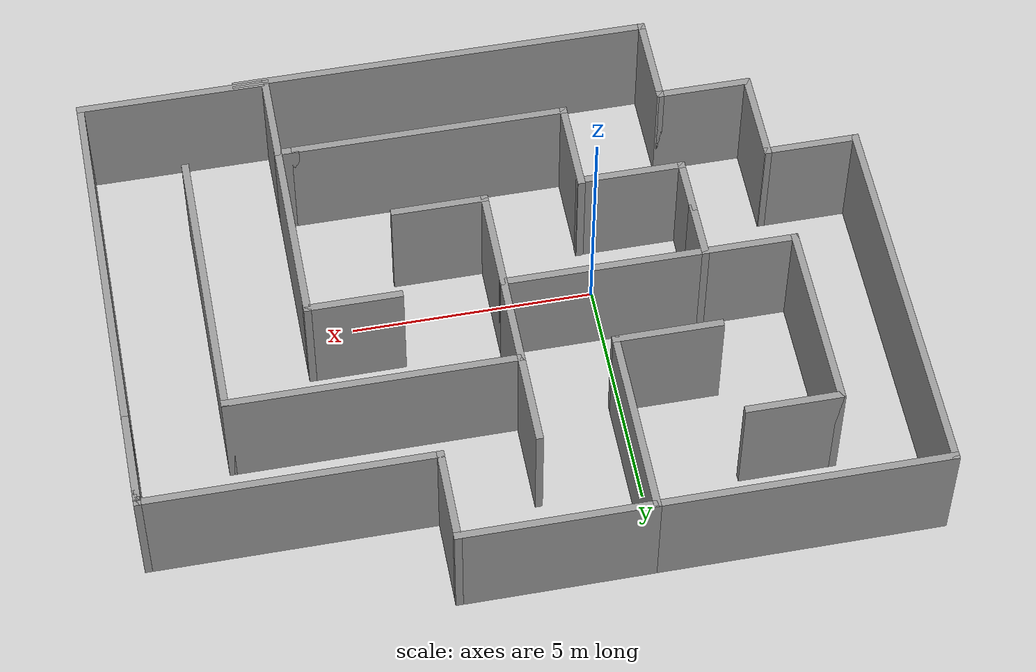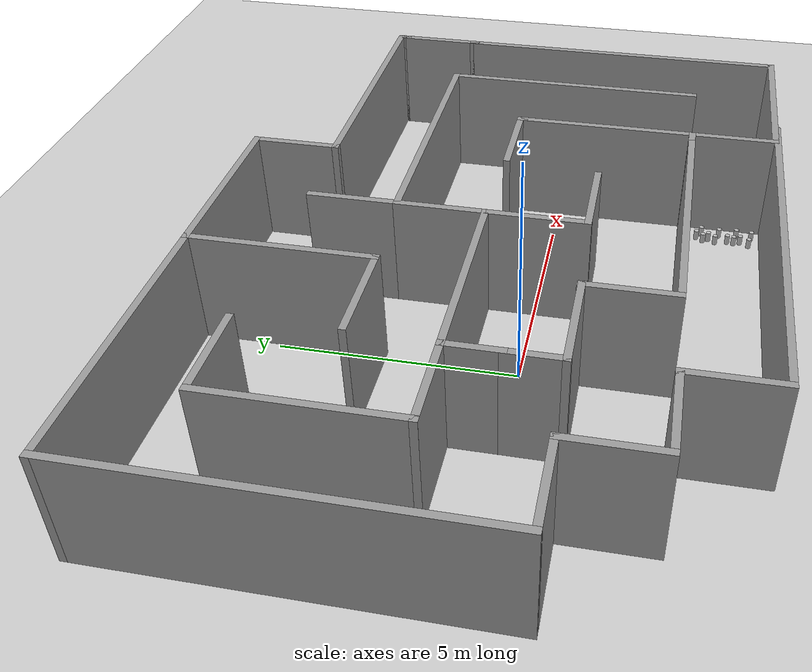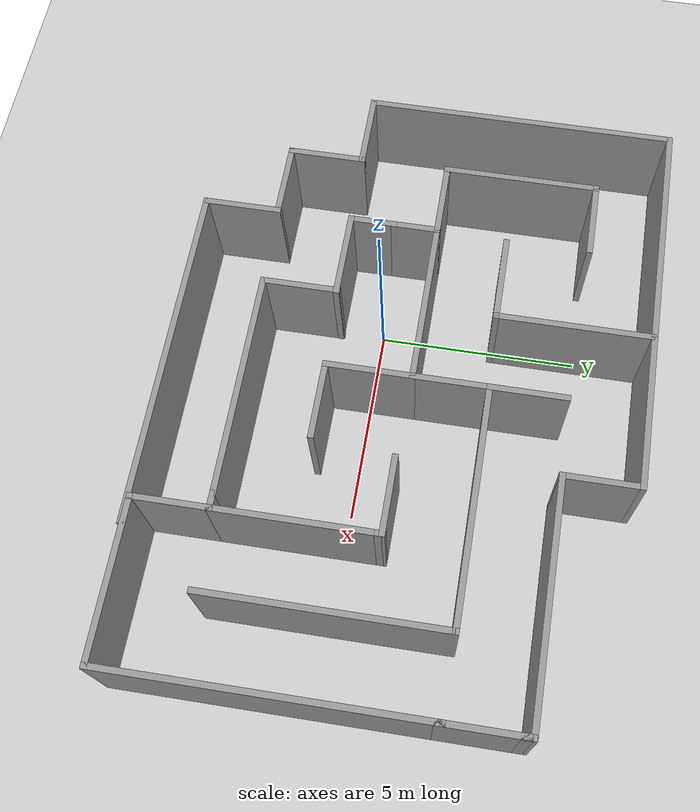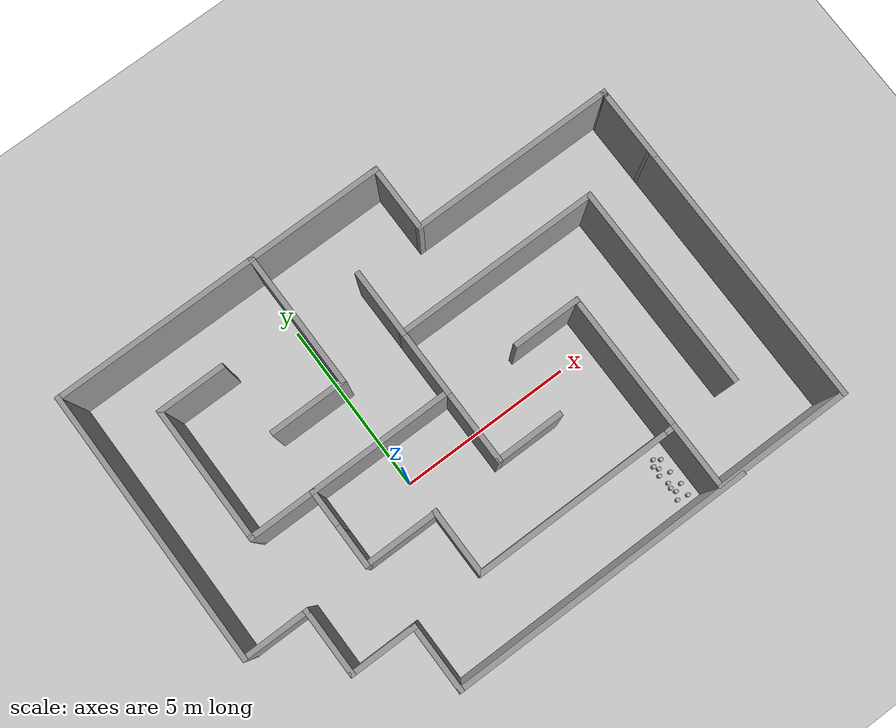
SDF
<sdf version="1.7">
 <world name="default">
  <light name="sun" type="directional">
   <pose>0 0 10 0 -0 0</pose>
   <diffuse>0.8 0.8 0.8 1</diffuse>
   <specular>0.2 0.2 0.2 1</specular>
   <attenuation>
    <range>1000</range>
    <constant>0.9</constant>
    <linear>0.01</linear>
    <quadratic>0.001</quadratic>
   </attenuation>
   <direction>-0.5 0.1 -0.9</direction>
   <spot><inner_angle>0</inner_angle><outer_angle>0</outer_angle><falloff>0</falloff></spot>
  </light>
  <model name="ground_plane">
   <static>1</static>
   <link name="link">
    <collision name="collision">
     <geometry><plane><normal>0 0 1</normal><size>100 100</size></plane></geometry>
     <surface><friction><ode><mu>100</mu><mu2>50</mu2></ode></friction></surface>
    </collision>
    <visual name="visual">
     <cast_shadows>0</cast_shadows>
     <geometry><plane><normal>0 0 1</normal><size>100 100</size></plane></geometry>
     <material>
      <script><uri>file://media/materials/scripts/gazebo.material</uri><name>Gazebo/Grey</name></script>
     </material>
    </visual>
   </link>
  </model>
  <gravity>0 0 -9.8</gravity>
  <magnetic_field>6e-06 2.3e-05 -4.2e-05</magnetic_field>
  <atmosphere type="adiabatic"/>
  <physics type="ode">
   <max_step_size>0.001</max_step_size>
   <real_time_factor>1</real_time_factor>
   <real_time_update_rate>1000</real_time_update_rate>
  </physics>
  <scene><ambient>0.4 0.4 0.4 1</ambient><background>0.7 0.7 0.7 1</background><shadows>1</shadows></scene>
  <audio><device>default</device></audio>
  <spherical_coordinates>
   <surface_model>EARTH_WGS84</surface_model>
   <latitude_deg>0</latitude_deg>
   <longitude_deg>0</longitude_deg>
   <elevation>0</elevation>
   <heading_deg>0</heading_deg>
  </spherical_coordinates>
  <model name="labyrinth">
   <pose>2.07355 0.913089 0 0 -0 0</pose>
   <link name="Wall_10">
    <collision name="Wall_10_Collision">
     <geometry><box><size>4.25 0.15 2.5</size></box></geometry>
     <pose>0 0 1.25 0 -0 0</pose>
    </collision>
    <visual name="Wall_10_Visual">
     <pose>0 0 1.25 0 -0 0</pose>
     <geometry><box><size>4.25 0.15 2.5</size></box></geometry>
     <material>
      <script><uri>file://media/materials/scripts/gazebo.material</uri><name>Gazebo/Grey</name></script>
      <ambient>1 1 1 1</ambient>
     </material>
     <meta><layer>0</layer></meta>
    </visual>
    <pose>-2.06523 0.157897 0 0 -0 0</pose>
   </link>
   <link name="Wall_11">
    <collision name="Wall_11_Collision">
     <geometry><box><size>2.25 0.15 2.5</size></box></geometry>
     <pose>0 0 1.25 0 -0 0</pose>
    </collision>
    <visual name="Wall_11_Visual">
     <pose>0 0 1.25 0 -0 0</pose>
     <geometry><box><size>2.25 0.15 2.5</size></box></geometry>
     <material>
      <script><uri>file://media/materials/scripts/gazebo.material</uri><name>Gazebo/Grey</name></script>
      <ambient>1 1 1 1</ambient>
     </material>
     <meta><layer>0</layer></meta>
    </visual>
    <pose>-0.015228 -0.892103 0 0 -0 -1.5708</pose>
   </link>
   <link name="Wall_12">
    <collision name="Wall_12_Collision">
     <geometry><box><size>2 0.15 2.5</size></box></geometry>
     <pose>0 0 1.25 0 -0 0</pose>
    </collision>
    <visual name="Wall_12_Visual">
     <pose>0 0 1.25 0 -0 0</pose>
     <geometry><box><size>2 0.15 2.5</size></box></geometry>
     <material>
      <script><uri>file://media/materials/scripts/gazebo.material</uri><name>Gazebo/Grey</name></script>
      <ambient>1 1 1 1</ambient>
     </material>
     <meta><layer>0</layer></meta>
    </visual>
    <pose>0.909772 -1.9421 0 0 -0 0</pose>
   </link>
   <link name="Wall_14">
    <collision name="Wall_14_Collision">
     <geometry><box><size>2 0.15 2.5</size></box></geometry>
     <pose>0 0 1.25 0 -0 0</pose>
    </collision>
    <visual name="Wall_14_Visual">
     <pose>0 0 1.25 0 -0 0</pose>
     <geometry><box><size>2 0.15 2.5</size></box></geometry>
     <material>
      <script><uri>file://media/materials/scripts/gazebo.material</uri><name>Gazebo/Grey</name></script>
      <ambient>1 1 1 1</ambient>
     </material>
     <meta><layer>0</layer></meta>
    </visual>
    <pose>-2.025 -2.95 0 0 -0 -1.5708</pose>
   </link>
   <link name="Wall_15">
    <collision name="Wall_15_Collision">
     <geometry><box><size>5.75 0.15 2.5</size></box></geometry>
     <pose>0 0 1.25 0 -0 0</pose>
    </collision>
    <visual name="Wall_15_Visual">
     <pose>0 0 1.25 0 -0 0</pose>
     <geometry><box><size>5.75 0.15 2.5</size></box></geometry>
     <material>
      <script><uri>file://media/materials/scripts/gazebo.material</uri><name>Gazebo/Grey</name></script>
      <ambient>1 1 1 1</ambient>
     </material>
     <meta><layer>0</layer></meta>
    </visual>
    <pose>0.775 -3.875 0 0 -0 0</pose>
   </link>
   <link name="Wall_18">
    <collision name="Wall_18_Collision">
     <geometry><box><size>0.5 0.15 2.5</size></box></geometry>
     <pose>0 0 1.25 0 -0 0</pose>
    </collision>
    <visual name="Wall_18_Visual">
     <pose>0 0 1.25 0 -0 0</pose>
     <geometry><box><size>0.5 0.15 2.5</size></box></geometry>
     <material>
      <script><uri>file://media/materials/scripts/gazebo.material</uri><name>Gazebo/Grey</name></script>
      <ambient>1 1 1 1</ambient>
     </material>
     <meta><layer>0</layer></meta>
    </visual>
    <pose>3.75 -3.875 0 0 -0 0</pose>
   </link>
   <link name="Wall_21">
    <collision name="Wall_21_Collision">
     <geometry><box><size>4 0.15 2.5</size></box></geometry>
     <pose>0 0 1.25 0 -0 0</pose>
    </collision>
    <visual name="Wall_21_Visual">
     <pose>0 0 1.25 0 -0 0</pose>
     <geometry><box><size>4 0.15 2.5</size></box></geometry>
     <material>
      <script><uri>file://media/materials/scripts/gazebo.material</uri><name>Gazebo/Grey</name></script>
      <ambient>1 1 1 1</ambient>
     </material>
     <meta><layer>0</layer></meta>
    </visual>
    <pose>3.925 -1.95 0 0 -0 1.5708</pose>
   </link>
   <link name="Wall_22">
    <collision name="Wall_22_Collision">
     <geometry><box><size>0.25 0.15 2.5</size></box></geometry>
     <pose>0 0 1.25 0 -0 0</pose>
    </collision>
    <visual name="Wall_22_Visual">
     <pose>0 0 1.25 0 -0 0</pose>
     <geometry><box><size>0.25 0.15 2.5</size></box></geometry>
     <material>
      <script><uri>file://media/materials/scripts/gazebo.material</uri><name>Gazebo/Grey</name></script>
      <ambient>1 1 1 1</ambient>
     </material>
     <meta><layer>0</layer></meta>
    </visual>
    <pose>3.925 0.025 0 0 -0 1.5708</pose>
   </link>
   <link name="Wall_23">
    <collision name="Wall_23_Collision">
     <geometry><box><size>2 0.15 2.5</size></box></geometry>
     <pose>0 0 1.25 0 -0 0</pose>
    </collision>
    <visual name="Wall_23_Visual">
     <pose>0 0 1.25 0 -0 0</pose>
     <geometry><box><size>2 0.15 2.5</size></box></geometry>
     <material>
      <script><uri>file://media/materials/scripts/gazebo.material</uri><name>Gazebo/Grey</name></script>
      <ambient>1 1 1 1</ambient>
     </material>
     <meta><layer>0</layer></meta>
    </visual>
    <pose>3 0.075 0 0 -0 3.14159</pose>
   </link>
   <link name="Wall_25">
    <collision name="Wall_25_Collision">
     <geometry><box><size>2 0.15 2.5</size></box></geometry>
     <pose>0 0 1.25 0 -0 0</pose>
    </collision>
    <visual name="Wall_25_Visual">
     <pose>0 0 1.25 0 -0 0</pose>
     <geometry><box><size>2 0.15 2.5</size></box></geometry>
     <material>
      <script><uri>file://media/materials/scripts/gazebo.material</uri><name>Gazebo/Grey</name></script>
      <ambient>1 1 1 1</ambient>
     </material>
     <meta><layer>0</layer></meta>
    </visual>
    <pose>-0.015228 1.0829 0 0 -0 1.5708</pose>
   </link>
   <link name="Wall_26">
    <collision name="Wall_26_Collision">
     <geometry><box><size>6 0.15 2.5</size></box></geometry>
     <pose>0 0 1.25 0 -0 0</pose>
    </collision>
    <visual name="Wall_26_Visual">
     <pose>0 0 1.25 0 -0 0</pose>
     <geometry><box><size>6 0.15 2.5</size></box></geometry>
     <material>
      <script><uri>file://media/materials/scripts/gazebo.material</uri><name>Gazebo/Grey</name></script>
      <ambient>1 1 1 1</ambient>
     </material>
     <meta><layer>0</layer></meta>
    </visual>
    <pose>2.90977 2.0079 0 0 -0 0</pose>
   </link>
   <link name="Wall_27">
    <collision name="Wall_27_Collision">
     <geometry><box><size>6 0.15 2.5</size></box></geometry>
     <pose>0 0 1.25 0 -0 0</pose>
    </collision>
    <visual name="Wall_27_Visual">
     <pose>0 0 1.25 0 -0 0</pose>
     <geometry><box><size>6 0.15 2.5</size></box></geometry>
     <material>
      <script><uri>file://media/materials/scripts/gazebo.material</uri><name>Gazebo/Grey</name></script>
      <ambient>1 1 1 1</ambient>
     </material>
     <meta><layer>0</layer></meta>
    </visual>
    <pose>5.83477 -0.917103 0 0 -0 -1.5708</pose>
   </link>
   <link name="Wall_29">
    <collision name="Wall_29_Collision">
     <geometry><box><size>2 0.15 2.5</size></box></geometry>
     <pose>0 0 1.25 0 -0 0</pose>
    </collision>
    <visual name="Wall_29_Visual">
     <pose>0 0 1.25 0 -0 0</pose>
     <geometry><box><size>2 0.15 2.5</size></box></geometry>
     <material>
      <script><uri>file://media/materials/scripts/gazebo.material</uri><name>Gazebo/Grey</name></script>
      <ambient>1 1 1 1</ambient>
     </material>
     <meta><layer>0</layer></meta>
    </visual>
    <pose>3.925 -4.8 0 0 -0 -1.5708</pose>
   </link>
   <link name="Wall_30">
    <collision name="Wall_30_Collision">
     <geometry><box><size>4 0.15 2.5</size></box></geometry>
     <pose>0 0 1.25 0 -0 0</pose>
    </collision>
    <visual name="Wall_30_Visual">
     <pose>0 0 1.25 0 -0 0</pose>
     <geometry><box><size>4 0.15 2.5</size></box></geometry>
     <material>
      <script><uri>file://media/materials/scripts/gazebo.material</uri><name>Gazebo/Grey</name></script>
      <ambient>1 1 1 1</ambient>
     </material>
     <meta><layer>0</layer></meta>
    </visual>
    <pose>5.85 -5.725 0 0 -0 0</pose>
   </link>
   <link name="Wall_31">
    <collision name="Wall_31_Collision">
     <geometry><box><size>7.75 0.15 2.5</size></box></geometry>
     <pose>0 0 1.25 0 -0 0</pose>
    </collision>
    <visual name="Wall_31_Visual">
     <pose>0 0 1.25 0 -0 0</pose>
     <geometry><box><size>7.75 0.15 2.5</size></box></geometry>
     <material>
      <script><uri>file://media/materials/scripts/gazebo.material</uri><name>Gazebo/Grey</name></script>
      <ambient>1 1 1 1</ambient>
     </material>
     <meta><layer>0</layer></meta>
    </visual>
    <pose>7.775 -1.925 0 0 -0 1.5708</pose>
   </link>
   <link name="Wall_32">
    <collision name="Wall_32_Collision">
     <geometry><box><size>0.25 0.15 2.5</size></box></geometry>
     <pose>0 0 1.25 0 -0 0</pose>
    </collision>
    <visual name="Wall_32_Visual">
     <pose>0 0 1.25 0 -0 0</pose>
     <geometry><box><size>0.25 0.15 2.5</size></box></geometry>
     <material>
      <script><uri>file://media/materials/scripts/gazebo.material</uri><name>Gazebo/Grey</name></script>
      <ambient>1 1 1 1</ambient>
     </material>
     <meta><layer>0</layer></meta>
    </visual>
    <pose>7.775 1.925 0 0 -0 1.5708</pose>
   </link>
   <link name="Wall_33">
    <collision name="Wall_33_Collision">
     <geometry><box><size>0.25 0.15 2.5</size></box></geometry>
     <pose>0 0 1.25 0 -0 0</pose>
    </collision>
    <visual name="Wall_33_Visual">
     <pose>0 0 1.25 0 -0 0</pose>
     <geometry><box><size>0.25 0.15 2.5</size></box></geometry>
     <material>
      <script><uri>file://media/materials/scripts/gazebo.material</uri><name>Gazebo/Grey</name></script>
      <ambient>1 1 1 1</ambient>
     </material>
     <meta><layer>0</layer></meta>
    </visual>
    <pose>7.775 1.925 0 0 -0 -1.5708</pose>
   </link>
   <link name="Wall_34">
    <collision name="Wall_34_Collision">
     <geometry><box><size>2 0.15 2.5</size></box></geometry>
     <pose>0 0 1.25 0 -0 0</pose>
    </collision>
    <visual name="Wall_34_Visual">
     <pose>0 0 1.25 0 -0 0</pose>
     <geometry><box><size>2 0.15 2.5</size></box></geometry>
     <material>
      <script><uri>file://media/materials/scripts/gazebo.material</uri><name>Gazebo/Grey</name></script>
      <ambient>1 1 1 1</ambient>
     </material>
     <meta><layer>0</layer></meta>
    </visual>
    <pose>7.775 2.8 0 0 -0 1.5708</pose>
   </link>
   <link name="Wall_35">
    <collision name="Wall_35_Collision">
     <geometry><box><size>0.25 0.15 2.5</size></box></geometry>
     <pose>0 0 1.25 0 -0 0</pose>
    </collision>
    <visual name="Wall_35_Visual">
     <pose>0 0 1.25 0 -0 0</pose>
     <geometry><box><size>0.25 0.15 2.5</size></box></geometry>
     <material>
      <script><uri>file://media/materials/scripts/gazebo.material</uri><name>Gazebo/Grey</name></script>
      <ambient>1 1 1 1</ambient>
     </material>
     <meta><layer>0</layer></meta>
    </visual>
    <pose>7.775 3.775 0 0 -0 1.5708</pose>
   </link>
   <link name="Wall_36">
    <collision name="Wall_36_Collision">
     <geometry><box><size>0.25 0.15 2.5</size></box></geometry>
     <pose>0 0 1.25 0 -0 0</pose>
    </collision>
    <visual name="Wall_36_Visual">
     <pose>0 0 1.25 0 -0 0</pose>
     <geometry><box><size>0.25 0.15 2.5</size></box></geometry>
     <material>
      <script><uri>file://media/materials/scripts/gazebo.material</uri><name>Gazebo/Grey</name></script>
      <ambient>1 1 1 1</ambient>
     </material>
     <meta><layer>0</layer></meta>
    </visual>
    <pose>7.775 3.775 0 0 -0 -1.5708</pose>
   </link>
   <link name="Wall_39">
    <collision name="Wall_39_Collision">
     <geometry><box><size>0.15 0.15 2.5</size></box></geometry>
     <pose>0 0 1.25 0 -0 0</pose>
    </collision>
    <visual name="Wall_39_Visual">
     <pose>0 0 1.25 0 -0 0</pose>
     <geometry><box><size>0.15 0.15 2.5</size></box></geometry>
     <material>
      <script><uri>file://media/materials/scripts/gazebo.material</uri><name>Gazebo/Grey</name></script>
      <ambient>1 1 1 1</ambient>
     </material>
     <meta><layer>0</layer></meta>
    </visual>
    <pose>7.775 3.825 0 0 -0 0</pose>
   </link>
   <link name="Wall_44">
    <collision name="Wall_44_Collision">
     <geometry><box><size>2 0.15 2.5</size></box></geometry>
     <pose>0 0 1.25 0 -0 0</pose>
    </collision>
    <visual name="Wall_44_Visual">
     <pose>0 0 1.25 0 -0 0</pose>
     <geometry><box><size>2 0.15 2.5</size></box></geometry>
     <material>
      <script><uri>file://media/materials/scripts/gazebo.material</uri><name>Gazebo/Grey</name></script>
      <ambient>1 1 1 1</ambient>
     </material>
     <meta><layer>0</layer></meta>
    </visual>
    <pose>-0.015228 2.9329 0 0 -0 1.5708</pose>
   </link>
   <link name="Wall_47">
    <collision name="Wall_47_Collision">
     <geometry><box><size>0.25 0.15 2.5</size></box></geometry>
     <pose>0 0 1.25 0 -0 0</pose>
    </collision>
    <visual name="Wall_47_Visual">
     <pose>0 0 1.25 0 -0 0</pose>
     <geometry><box><size>0.25 0.15 2.5</size></box></geometry>
     <material>
      <script><uri>file://media/materials/scripts/gazebo.material</uri><name>Gazebo/Grey</name></script>
      <ambient>1 1 1 1</ambient>
     </material>
     <meta><layer>0</layer></meta>
    </visual>
    <pose>7.775 3.875 0 0 -0 1.5708</pose>
   </link>
   <link name="Wall_48">
    <collision name="Wall_48_Collision">
     <geometry><box><size>6 0.15 2.5</size></box></geometry>
     <pose>0 0 1.25 0 -0 0</pose>
    </collision>
    <visual name="Wall_48_Visual">
     <pose>0 0 1.25 0 -0 0</pose>
     <geometry><box><size>6 0.15 2.5</size></box></geometry>
     <material>
      <script><uri>file://media/materials/scripts/gazebo.material</uri><name>Gazebo/Grey</name></script>
      <ambient>1 1 1 1</ambient>
     </material>
     <meta><layer>0</layer></meta>
    </visual>
    <pose>4.85 3.925 0 0 -0 3.14159</pose>
   </link>
   <link name="Wall_5">
    <collision name="Wall_5_Collision">
     <geometry><box><size>2.25 0.15 2.5</size></box></geometry>
     <pose>0 0 1.25 0 -0 0</pose>
    </collision>
    <visual name="Wall_5_Visual">
     <pose>0 0 1.25 0 -0 0</pose>
     <geometry><box><size>2.25 0.15 2.5</size></box></geometry>
     <material>
      <script><uri>file://media/materials/scripts/gazebo.material</uri><name>Gazebo/Grey</name></script>
      <ambient>1 1 1 1</ambient>
     </material>
     <meta><layer>0</layer></meta>
    </visual>
    <pose>-3.06523 -2.0421 0 0 -0 0</pose>
   </link>
   <link name="Wall_50">
    <collision name="Wall_50_Collision">
     <geometry><box><size>2 0.15 2.5</size></box></geometry>
     <pose>0 0 1.25 0 -0 0</pose>
    </collision>
    <visual name="Wall_50_Visual">
     <pose>0 0 1.25 0 -0 0</pose>
     <geometry><box><size>2 0.15 2.5</size></box></geometry>
     <material>
      <script><uri>file://media/materials/scripts/gazebo.material</uri><name>Gazebo/Grey</name></script>
      <ambient>1 1 1 1</ambient>
     </material>
     <meta><layer>0</layer></meta>
    </visual>
    <pose>1.925 4.85 0 0 -0 1.5708</pose>
   </link>
   <link name="Wall_51">
    <collision name="Wall_51_Collision">
     <geometry><box><size>4 0.15 2.5</size></box></geometry>
     <pose>0 0 1.25 0 -0 0</pose>
    </collision>
    <visual name="Wall_51_Visual">
     <pose>0 0 1.25 0 -0 0</pose>
     <geometry><box><size>4 0.15 2.5</size></box></geometry>
     <material>
      <script><uri>file://media/materials/scripts/gazebo.material</uri><name>Gazebo/Grey</name></script>
      <ambient>1 1 1 1</ambient>
     </material>
     <meta><layer>0</layer></meta>
    </visual>
    <pose>-0 5.775 0 0 -0 3.14159</pose>
   </link>
   <link name="Wall_52">
    <collision name="Wall_52_Collision">
     <geometry><box><size>4 0.15 2.5</size></box></geometry>
     <pose>0 0 1.25 0 -0 0</pose>
    </collision>
    <visual name="Wall_52_Visual">
     <pose>0 0 1.25 0 -0 0</pose>
     <geometry><box><size>4 0.15 2.5</size></box></geometry>
     <material>
      <script><uri>file://media/materials/scripts/gazebo.material</uri><name>Gazebo/Grey</name></script>
      <ambient>1 1 1 1</ambient>
     </material>
     <meta><layer>0</layer></meta>
    </visual>
    <pose>-1.925 3.85 0 0 -0 -1.5708</pose>
   </link>
   <link name="Wall_55">
    <collision name="Wall_55_Collision">
     <geometry><box><size>2.25 0.15 2.5</size></box></geometry>
     <pose>0 0 1.25 0 -0 0</pose>
    </collision>
    <visual name="Wall_55_Visual">
     <pose>0 0 1.25 0 -0 0</pose>
     <geometry><box><size>2.25 0.15 2.5</size></box></geometry>
     <material>
      <script><uri>file://media/materials/scripts/gazebo.material</uri><name>Gazebo/Grey</name></script>
      <ambient>1 1 1 1</ambient>
     </material>
     <meta><layer>0</layer></meta>
    </visual>
    <pose>-2.975 1.925 0 0 -0 3.14159</pose>
   </link>
   <link name="Wall_57">
    <collision name="Wall_57_Collision">
     <geometry><box><size>2 0.15 2.5</size></box></geometry>
     <pose>0 0 1.25 0 -0 0</pose>
    </collision>
    <visual name="Wall_57_Visual">
     <pose>0 0 1.25 0 -0 0</pose>
     <geometry><box><size>2 0.15 2.5</size></box></geometry>
     <material>
      <script><uri>file://media/materials/scripts/gazebo.material</uri><name>Gazebo/Grey</name></script>
      <ambient>1 1 1 1</ambient>
     </material>
     <meta><layer>0</layer></meta>
    </visual>
    <pose>-5.04023 0.157897 0 0 -0 3.14159</pose>
   </link>
   <link name="Wall_58">
    <collision name="Wall_58_Collision">
     <geometry><box><size>4 0.15 2.5</size></box></geometry>
     <pose>0 0 1.25 0 -0 0</pose>
    </collision>
    <visual name="Wall_58_Visual">
     <pose>0 0 1.25 0 -0 0</pose>
     <geometry><box><size>4 0.15 2.5</size></box></geometry>
     <material>
      <script><uri>file://media/materials/scripts/gazebo.material</uri><name>Gazebo/Grey</name></script>
      <ambient>1 1 1 1</ambient>
     </material>
     <meta><layer>0</layer></meta>
    </visual>
    <pose>-5.96523 2.0829 0 0 -0 1.5708</pose>
   </link>
   <link name="Wall_59">
    <collision name="Wall_59_Collision">
     <geometry><box><size>2 0.15 2.5</size></box></geometry>
     <pose>0 0 1.25 0 -0 0</pose>
    </collision>
    <visual name="Wall_59_Visual">
     <pose>0 0 1.25 0 -0 0</pose>
     <geometry><box><size>2 0.15 2.5</size></box></geometry>
     <material>
      <script><uri>file://media/materials/scripts/gazebo.material</uri><name>Gazebo/Grey</name></script>
      <ambient>1 1 1 1</ambient>
     </material>
     <meta><layer>0</layer></meta>
    </visual>
    <pose>-5.04023 4.0079 0 0 -0 0</pose>
   </link>
   <link name="Wall_61">
    <collision name="Wall_61_Collision">
     <geometry><box><size>6 0.15 2.5</size></box></geometry>
     <pose>0 0 1.25 0 -0 0</pose>
    </collision>
    <visual name="Wall_61_Visual">
     <pose>0 0 1.25 0 -0 0</pose>
     <geometry><box><size>6 0.15 2.5</size></box></geometry>
     <material>
      <script><uri>file://media/materials/scripts/gazebo.material</uri><name>Gazebo/Grey</name></script>
      <ambient>1 1 1 1</ambient>
     </material>
     <meta><layer>0</layer></meta>
    </visual>
    <pose>-4.85 5.775 0 0 -0 3.14159</pose>
   </link>
   <link name="Wall_62">
    <collision name="Wall_62_Collision">
     <geometry><box><size>8 0.15 2.5</size></box></geometry>
     <pose>0 0 1.25 0 -0 0</pose>
    </collision>
    <visual name="Wall_62_Visual">
     <pose>0 0 1.25 0 -0 0</pose>
     <geometry><box><size>8 0.15 2.5</size></box></geometry>
     <material>
      <script><uri>file://media/materials/scripts/gazebo.material</uri><name>Gazebo/Grey</name></script>
      <ambient>1 1 1 1</ambient>
     </material>
     <meta><layer>0</layer></meta>
    </visual>
    <pose>-7.775 1.85 0 0 -0 -1.5708</pose>
   </link>
   <link name="Wall_63">
    <collision name="Wall_63_Collision">
     <geometry><box><size>2 0.15 2.5</size></box></geometry>
     <pose>0 0 1.25 0 -0 0</pose>
    </collision>
    <visual name="Wall_63_Visual">
     <pose>0 0 1.25 0 -0 0</pose>
     <geometry><box><size>2 0.15 2.5</size></box></geometry>
     <material>
      <script><uri>file://media/materials/scripts/gazebo.material</uri><name>Gazebo/Grey</name></script>
      <ambient>1 1 1 1</ambient>
     </material>
     <meta><layer>0</layer></meta>
    </visual>
    <pose>-6.85 -2.075 0 0 -0 0</pose>
   </link>
   <link name="Wall_64">
    <collision name="Wall_64_Collision">
     <geometry><box><size>2 0.15 2.5</size></box></geometry>
     <pose>0 0 1.25 0 -0 0</pose>
    </collision>
    <visual name="Wall_64_Visual">
     <pose>0 0 1.25 0 -0 0</pose>
     <geometry><box><size>2 0.15 2.5</size></box></geometry>
     <material>
      <script><uri>file://media/materials/scripts/gazebo.material</uri><name>Gazebo/Grey</name></script>
      <ambient>1 1 1 1</ambient>
     </material>
     <meta><layer>0</layer></meta>
    </visual>
    <pose>-5.925 -3 0 0 -0 -1.5708</pose>
   </link>
   <link name="Wall_65">
    <collision name="Wall_65_Collision">
     <geometry><box><size>2 0.15 2.5</size></box></geometry>
     <pose>0 0 1.25 0 -0 0</pose>
    </collision>
    <visual name="Wall_65_Visual">
     <pose>0 0 1.25 0 -0 0</pose>
     <geometry><box><size>2 0.15 2.5</size></box></geometry>
     <material>
      <script><uri>file://media/materials/scripts/gazebo.material</uri><name>Gazebo/Grey</name></script>
      <ambient>1 1 1 1</ambient>
     </material>
     <meta><layer>0</layer></meta>
    </visual>
    <pose>-5 -3.925 0 0 -0 0</pose>
   </link>
   <link name="Wall_66">
    <collision name="Wall_66_Collision">
     <geometry><box><size>2 0.15 2.5</size></box></geometry>
     <pose>0 0 1.25 0 -0 0</pose>
    </collision>
    <visual name="Wall_66_Visual">
     <pose>0 0 1.25 0 -0 0</pose>
     <geometry><box><size>2 0.15 2.5</size></box></geometry>
     <material>
      <script><uri>file://media/materials/scripts/gazebo.material</uri><name>Gazebo/Grey</name></script>
      <ambient>1 1 1 1</ambient>
     </material>
     <meta><layer>0</layer></meta>
    </visual>
    <pose>-4.075 -4.85 0 0 -0 -1.5708</pose>
   </link>
   <link name="Wall_67">
    <collision name="Wall_67_Collision">
     <geometry><box><size>8.75 0.15 2.5</size></box></geometry>
     <pose>0 0 1.25 0 -0 0</pose>
    </collision>
    <visual name="Wall_67_Visual">
     <pose>0 0 1.25 0 -0 0</pose>
     <geometry><box><size>8.75 0.15 2.5</size></box></geometry>
     <material>
      <script><uri>file://media/materials/scripts/gazebo.material</uri><name>Gazebo/Grey</name></script>
      <ambient>1 1 1 1</ambient>
     </material>
     <meta><layer>0</layer></meta>
    </visual>
    <pose>0.225 -5.775 0 0 -0 0</pose>
   </link>
   <link name="Wall_8">
    <collision name="Wall_8_Collision">
     <geometry><box><size>1.25 0.15 2.5</size></box></geometry>
     <pose>0 0 1.25 0 -0 0</pose>
    </collision>
    <visual name="Wall_8_Visual">
     <pose>0 0 1.25 0 -0 0</pose>
     <geometry><box><size>1.25 0.15 2.5</size></box></geometry>
     <material>
      <script><uri>file://media/materials/scripts/gazebo.material</uri><name>Gazebo/Grey</name></script>
      <ambient>1 1 1 1</ambient>
     </material>
     <meta><layer>0</layer></meta>
    </visual>
    <pose>-4.11523 -1.4921 0 0 -0 1.5708</pose>
   </link>
   <link name="Wall_9">
    <collision name="Wall_9_Collision">
     <geometry><box><size>1.25 0.15 2.5</size></box></geometry>
     <pose>0 0 1.25 0 -0 0</pose>
    </collision>
    <visual name="Wall_9_Visual">
     <pose>0 0 1.25 0 -0 0</pose>
     <geometry><box><size>1.25 0.15 2.5</size></box></geometry>
     <material>
      <script><uri>file://media/materials/scripts/gazebo.material</uri><name>Gazebo/Grey</name></script>
      <ambient>1 1 1 1</ambient>
     </material>
     <meta><layer>0</layer></meta>
    </visual>
    <pose>-4.11523 -0.392103 0 0 -0 1.5708</pose>
   </link>
   <static>1</static>
  </model>
  <model name="beer">
   <link name="link">
    <pose>0 0 0.115 0 -0 0</pose>
    <inertial>
     <mass>0.39</mass>
     <inertia><ixx>0.00058</ixx><ixy>0</ixy><ixz>0</ixz><iyy>0.00058</iyy><iyz>0</iyz><izz>0.00019</izz></inertia>
    </inertial>
    <collision name="collision">
     <geometry><cylinder><radius>0.055</radius><length>0.23</length></cylinder></geometry>
    </collision>
    <visual name="visual">
     <geometry><cylinder><radius>0.055</radius><length>0.23</length></cylinder></geometry>
     <material>
      <script>
       <uri>model://beer/materials/scripts</uri>
       <uri>model://beer/materials/textures</uri>
       <name>Beer/Diffuse</name>
      </script>
     </material>
    </visual>
   </link>
   <pose>5.48187 -3.33212 -7e-06 -1e-06 0 -3e-06</pose>
  </model>
  <model name="beer_0">
   <link name="link">
    <pose>0 0 0.115 0 -0 0</pose>
    <inertial>
     <mass>0.39</mass>
     <inertia><ixx>0.00058</ixx><ixy>0</ixy><ixz>0</ixz><iyy>0.00058</iyy><iyz>0</iyz><izz>0.00019</izz></inertia>
    </inertial>
    <collision name="collision">
     <geometry><cylinder><radius>0.055</radius><length>0.23</length></cylinder></geometry>
    </collision>
    <visual name="visual">
     <geometry><cylinder><radius>0.055</radius><length>0.23</length></cylinder></geometry>
     <material>
      <script>
       <uri>model://beer/materials/scripts</uri>
       <uri>model://beer/materials/textures</uri>
       <name>Beer/Diffuse</name>
      </script>
     </material>
    </visual>
   </link>
   <pose>5.45512 -3.61095 -7e-06 -1e-06 0 -3e-06</pose>
  </model>
  <model name="beer_1">
   <link name="link">
    <pose>0 0 0.115 0 -0 0</pose>
    <inertial>
     <mass>0.39</mass>
     <inertia><ixx>0.00058</ixx><ixy>0</ixy><ixz>0</ixz><iyy>0.00058</iyy><iyz>0</iyz><izz>0.00019</izz></inertia>
    </inertial>
    <collision name="collision">
     <geometry><cylinder><radius>0.055</radius><length>0.23</length></cylinder></geometry>
    </collision>
    <visual name="visual">
     <geometry><cylinder><radius>0.055</radius><length>0.23</length></cylinder></geometry>
     <material>
      <script>
       <uri>model://beer/materials/scripts</uri>
       <uri>model://beer/materials/textures</uri>
       <name>Beer/Diffuse</name>
      </script>
     </material>
    </visual>
   </link>
   <pose>5.63971 -3.85247 -7e-06 -1e-06 0 -3e-06</pose>
  </model>
  <model name="beer_2">
   <link name="link">
    <pose>0 0 0.115 0 -0 0</pose>
    <inertial>
     <mass>0.39</mass>
     <inertia><ixx>0.00058</ixx><ixy>0</ixy><ixz>0</ixz><iyy>0.00058</iyy><iyz>0</iyz><izz>0.00019</izz></inertia>
    </inertial>
    <collision name="collision">
     <geometry><cylinder><radius>0.055</radius><length>0.23</length></cylinder></geometry>
    </collision>
    <visual name="visual">
     <geometry><cylinder><radius>0.055</radius><length>0.23</length></cylinder></geometry>
     <material>
      <script>
       <uri>model://beer/materials/scripts</uri>
       <uri>model://beer/materials/textures</uri>
       <name>Beer/Diffuse</name>
      </script>
     </material>
    </visual>
   </link>
   <pose>5.42244 -4.05085 -7e-06 -1e-06 0 -3e-06</pose>
  </model>
  <model name="beer_3">
   <link name="link">
    <pose>0 0 0.115 0 -0 0</pose>
    <inertial>
     <mass>0.39</mass>
     <inertia><ixx>0.00058</ixx><ixy>0</ixy><ixz>0</ixz><iyy>0.00058</iyy><iyz>0</iyz><izz>0.00019</izz></inertia>
    </inertial>
    <collision name="collision">
     <geometry><cylinder><radius>0.055</radius><length>0.23</length></cylinder></geometry>
    </collision>
    <visual name="visual">
     <geometry><cylinder><radius>0.055</radius><length>0.23</length></cylinder></geometry>
     <material>
      <script>
       <uri>model://beer/materials/scripts</uri>
       <uri>model://beer/materials/textures</uri>
       <name>Beer/Diffuse</name>
      </script>
     </material>
    </visual>
   </link>
   <pose>5.68033 -4.25659 -7e-06 -1e-06 0 -3e-06</pose>
  </model>
  <model name="beer_4">
   <link name="link">
    <pose>0 0 0.115 0 -0 0</pose>
    <inertial>
     <mass>0.39</mass>
     <inertia><ixx>0.00058</ixx><ixy>0</ixy><ixz>0</ixz><iyy>0.00058</iyy><iyz>0</iyz><izz>0.00019</izz></inertia>
    </inertial>
    <collision name="collision">
     <geometry><cylinder><radius>0.055</radius><length>0.23</length></cylinder></geometry>
    </collision>
    <visual name="visual">
     <geometry><cylinder><radius>0.055</radius><length>0.23</length></cylinder></geometry>
     <material>
      <script>
       <uri>model://beer/materials/scripts</uri>
       <uri>model://beer/materials/textures</uri>
       <name>Beer/Diffuse</name>
      </script>
     </material>
    </visual>
   </link>
   <pose>5.44569 -4.34322 -7e-06 -1e-06 0 -3e-06</pose>
  </model>
  <model name="beer_5">
   <link name="link">
    <pose>0 0 0.115 0 -0 0</pose>
    <inertial>
     <mass>0.39</mass>
     <inertia><ixx>0.00058</ixx><ixy>0</ixy><ixz>0</ixz><iyy>0.00058</iyy><iyz>0</iyz><izz>0.00019</izz></inertia>
    </inertial>
    <collision name="collision">
     <geometry><cylinder><radius>0.055</radius><length>0.23</length></cylinder></geometry>
    </collision>
    <visual name="visual">
     <geometry><cylinder><radius>0.055</radius><length>0.23</length></cylinder></geometry>
     <material>
      <script>
       <uri>model://beer/materials/scripts</uri>
       <uri>model://beer/materials/textures</uri>
       <name>Beer/Diffuse</name>
      </script>
     </material>
    </visual>
   </link>
   <pose>5.64268 -4.60159 -7e-06 -1e-06 0 -3e-06</pose>
  </model>
  <model name="beer_6">
   <link name="link">
    <pose>0 0 0.115 0 -0 0</pose>
    <inertial>
     <mass>0.39</mass>
     <inertia><ixx>0.00058</ixx><ixy>0</ixy><ixz>0</ixz><iyy>0.00058</iyy><iyz>0</iyz><izz>0.00019</izz></inertia>
    </inertial>
    <collision name="collision">
     <geometry><cylinder><radius>0.055</radius><length>0.23</length></cylinder></geometry>
    </collision>
    <visual name="visual">
     <geometry><cylinder><radius>0.055</radius><length>0.23</length></cylinder></geometry>
     <material>
      <script>
       <uri>model://beer/materials/scripts</uri>
       <uri>model://beer/materials/textures</uri>
       <name>Beer/Diffuse</name>
      </script>
     </material>
    </visual>
   </link>
   <pose>5.64979 -3.44752 -7e-06 -1e-06 0 -3e-06</pose>
  </model>
  <model name="beer_7">
   <link name="link">
    <pose>0 0 0.115 0 -0 0</pose>
    <inertial>
     <mass>0.39</mass>
     <inertia><ixx>0.00058</ixx><ixy>0</ixy><ixz>0</ixz><iyy>0.00058</iyy><iyz>0</iyz><izz>0.00019</izz></inertia>
    </inertial>
    <collision name="collision">
     <geometry><cylinder><radius>0.055</radius><length>0.23</length></cylinder></geometry>
    </collision>
    <visual name="visual">
     <geometry><cylinder><radius>0.055</radius><length>0.23</length></cylinder></geometry>
     <material>
      <script>
       <uri>model://beer/materials/scripts</uri>
       <uri>model://beer/materials/textures</uri>
       <name>Beer/Diffuse</name>
      </script>
     </material>
    </visual>
   </link>
   <pose>5.35051 -3.76812 -7e-06 -1e-06 0 -3e-06</pose>
  </model>
  <model name="beer_8">
   <link name="link">
    <pose>0 0 0.115 0 -0 0</pose>
    <inertial>
     <mass>0.39</mass>
     <inertia><ixx>0.00058</ixx><ixy>0</ixy><ixz>0</ixz><iyy>0.00058</iyy><iyz>0</iyz><izz>0.00019</izz></inertia>
    </inertial>
    <collision name="collision">
     <geometry><cylinder><radius>0.055</radius><length>0.23</length></cylinder></geometry>
    </collision>
    <visual name="visual">
     <geometry><cylinder><radius>0.055</radius><length>0.23</length></cylinder></geometry>
     <material>
      <script>
       <uri>model://beer/materials/scripts</uri>
       <uri>model://beer/materials/textures</uri>
       <name>Beer/Diffuse</name>
      </script>
     </material>
    </visual>
   </link>
   <pose>5.39116 -4.19663 -7e-06 -1e-06 0 -3e-06</pose>
  </model>
  <model name="beer_9">
   <link name="link">
    <pose>0 0 0.115 0 -0 0</pose>
    <inertial>
     <mass>0.39</mass>
     <inertia><ixx>0.00058</ixx><ixy>0</ixy><ixz>0</ixz><iyy>0.00058</iyy><iyz>0</iyz><izz>0.00019</izz></inertia>
    </inertial>
    <collision name="collision">
     <geometry><cylinder><radius>0.055</radius><length>0.23</length></cylinder></geometry>
    </collision>
    <visual name="visual">
     <geometry><cylinder><radius>0.055</radius><length>0.23</length></cylinder></geometry>
     <material>
      <script>
       <uri>model://beer/materials/scripts</uri>
       <uri>model://beer/materials/textures</uri>
       <name>Beer/Diffuse</name>
      </script>
     </material>
    </visual>
   </link>
   <pose>5.37639 -3.48377 -7e-06 -1e-06 0 -3e-06</pose>
  </model>
  <model name="beer_10">
   <link name="link">
    <pose>0 0 0.115 0 -0 0</pose>
    <inertial>
     <mass>0.39</mass>
     <inertia><ixx>0.00058</ixx><ixy>0</ixy><ixz>0</ixz><iyy>0.00058</iyy><iyz>0</iyz><izz>0.00019</izz></inertia>
    </inertial>
    <collision name="collision">
     <geometry><cylinder><radius>0.055</radius><length>0.23</length></cylinder></geometry>
    </collision>
    <visual name="visual">
     <geometry><cylinder><radius>0.055</radius><length>0.23</length></cylinder></geometry>
     <material>
      <script>
       <uri>model://beer/materials/scripts</uri>
       <uri>model://beer/materials/textures</uri>
       <name>Beer/Diffuse</name>
      </script>
     </material>
    </visual>
   </link>
   <pose>5.34341 -4.54281 -7e-06 -1e-06 0 -3e-06</pose>
  </model>
 </world>
</sdf>
